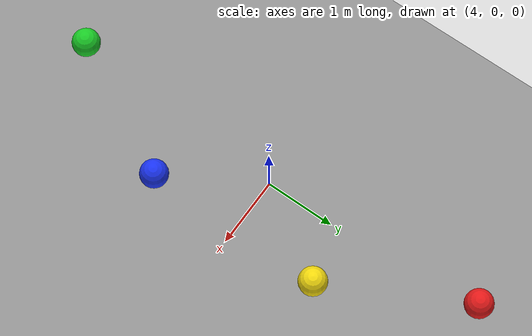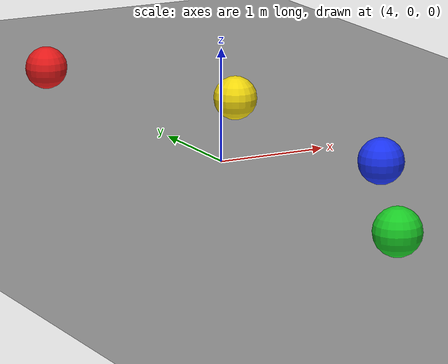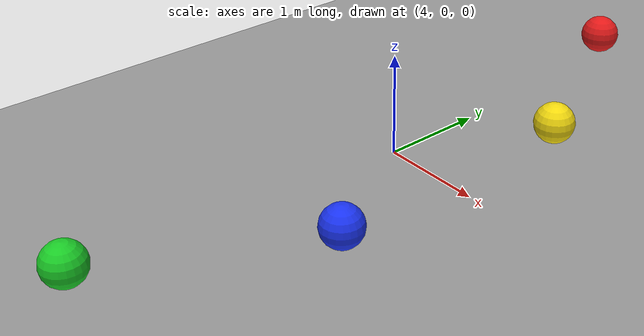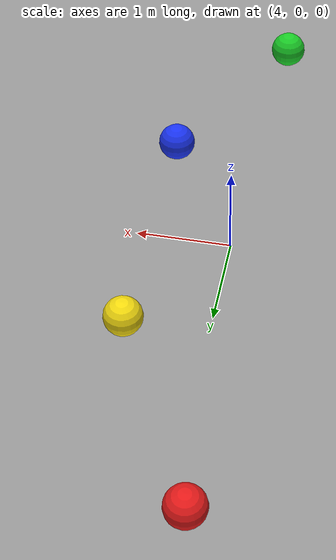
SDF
<?xml version="1.0"?>
<sdf version="1.6">
  <world name="colored_balls_arc">

    <!-- ==================== Physics ==================== -->
    <physics type="ode">
      <real_time_update_rate>1000.0</real_time_update_rate>
      <max_step_size>0.001</max_step_size>
      <real_time_factor>1</real_time_factor>
    </physics>

    <!-- ==================== Scene ==================== -->
    <scene>
      <ambient>0.6 0.6 0.6 1</ambient>
      <background>0.4 0.5 0.6 1</background>
      <shadows>false</shadows>
    </scene>

    <!-- ==================== Lighting ==================== -->
    <light name="sun" type="directional">
      <cast_shadows>true</cast_shadows>
      <pose>0 0 10 0 0 0</pose>
      <diffuse>0.9 0.9 0.9 1</diffuse>
      <specular>0.3 0.3 0.3 1</specular>
      <direction>-0.3 0.3 -1</direction>
    </light>

    <!-- ==================== Gazebo ROS State Plugin ==================== -->
    <plugin name="gazebo_ros_state" filename="libgazebo_ros_state.so">
      <ros>
        <namespace>/</namespace>
      </ros>
    </plugin>

    <!-- ==================== Ground Plane ==================== -->
    <model name="ground_plane">
      <static>true</static>
      <link name="link">
        <collision name="collision">
          <geometry>
            <plane>
              <normal>0 0 1</normal>
              <size>100 100</size>
            </plane>
          </geometry>
          <surface>
            <friction>
              <ode><mu>100</mu><mu2>50</mu2></ode>
            </friction>
          </surface>
        </collision>
        <visual name="visual">
          <cast_shadows>false</cast_shadows>
          <geometry>
            <plane>
              <normal>0 0 1</normal>
              <size>20 20</size>
            </plane>
          </geometry>
          <material>
            <ambient>0.58 0.58 0.58 1</ambient>
            <diffuse>0.58 0.58 0.58 1</diffuse>
            <specular>0 0 0 1</specular>
          </material>
        </visual>
      </link>
    </model>

    <!-- ==================== 红球 (Red Ball) θ=+40° ==================== -->
    <model name="red_ball">
      <static>false</static>
      <pose>3.83 3.21 0.20 0 0 0</pose>
      <link name="link">
        <inertial>
          <mass>0.5</mass>
          <inertia>
            <!-- I = 2/5 * mass * radius² = 2/5 * 0.5 * 0.04 = 0.0080 -->
            <ixx>0.0080</ixx><ixy>0</ixy><ixz>0</ixz>
            <iyy>0.0080</iyy><iyz>0</iyz>
            <izz>0.0080</izz>
          </inertia>
        </inertial>
        <collision name="collision">
          <geometry>
            <!-- 球半径（m）：同步修改 visual 中的 radius 和上方 pose 的 z -->
            <sphere><radius>0.20</radius></sphere>
          </geometry>
          <surface>
            <friction>
              <ode><mu>0.6</mu><mu2>0.6</mu2></ode>
            </friction>
            <bounce>
              <restitution_coefficient>0.5</restitution_coefficient>
              <threshold>0</threshold>
            </bounce>
          </surface>
        </collision>
        <visual name="visual">
          <geometry>
            <sphere><radius>0.20</radius></sphere>
          </geometry>
          <material>
            <ambient>0.9 0.1 0.1 1</ambient>
            <diffuse>0.9 0.1 0.1 1</diffuse>
            <specular>0.5 0.3 0.3 50</specular>
          </material>
        </visual>
      </link>
    </model>

    <!-- ==================== 黄球 (Yellow Ball) θ=+15° ==================== -->
    <model name="yellow_ball">
      <static>false</static>
      <pose>4.83 1.29 0.20 0 0 0</pose>
      <link name="link">
        <inertial>
          <mass>0.5</mass>
          <inertia>
            <!-- I = 2/5 * mass * radius² = 2/5 * 0.5 * 0.04 = 0.0080 -->
            <ixx>0.0080</ixx><ixy>0</ixy><ixz>0</ixz>
            <iyy>0.0080</iyy><iyz>0</iyz>
            <izz>0.0080</izz>
          </inertia>
        </inertial>
        <collision name="collision">
          <geometry>
            <!-- 球半径（m）：同步修改 visual 中的 radius 和上方 pose 的 z -->
            <sphere><radius>0.20</radius></sphere>
          </geometry>
          <surface>
            <friction>
              <ode><mu>0.6</mu><mu2>0.6</mu2></ode>
            </friction>
            <bounce>
              <restitution_coefficient>0.5</restitution_coefficient>
              <threshold>0</threshold>
            </bounce>
          </surface>
        </collision>
        <visual name="visual">
          <geometry>
            <sphere><radius>0.20</radius></sphere>
          </geometry>
          <material>
            <ambient>0.95 0.85 0.05 1</ambient>
            <diffuse>0.95 0.85 0.05 1</diffuse>
            <specular>0.5 0.5 0.2 50</specular>
          </material>
        </visual>
      </link>
    </model>

    <!-- ==================== 蓝球 (Blue Ball) θ=-15° ==================== -->
    <model name="blue_ball">
      <static>false</static>
      <pose>4.83 -1.29 0.20 0 0 0</pose>
      <link name="link">
        <inertial>
          <mass>0.5</mass>
          <inertia>
            <!-- I = 2/5 * mass * radius² = 2/5 * 0.5 * 0.04 = 0.0080 -->
            <ixx>0.0080</ixx><ixy>0</ixy><ixz>0</ixz>
            <iyy>0.0080</iyy><iyz>0</iyz>
            <izz>0.0080</izz>
          </inertia>
        </inertial>
        <collision name="collision">
          <geometry>
            <!-- 球半径（m）：同步修改 visual 中的 radius 和上方 pose 的 z -->
            <sphere><radius>0.20</radius></sphere>
          </geometry>
          <surface>
            <friction>
              <ode><mu>0.6</mu><mu2>0.6</mu2></ode>
            </friction>
            <bounce>
              <restitution_coefficient>0.5</restitution_coefficient>
              <threshold>0</threshold>
            </bounce>
          </surface>
        </collision>
        <visual name="visual">
          <geometry>
            <sphere><radius>0.20</radius></sphere>
          </geometry>
          <material>
            <ambient>0.1 0.2 0.95 1</ambient>
            <diffuse>0.1 0.2 0.95 1</diffuse>
            <specular>0.3 0.3 0.6 50</specular>
          </material>
        </visual>
      </link>
    </model>

    <!-- ==================== 绿球 (Green Ball) θ=-40° ==================== -->
    <model name="green_ball">
      <static>false</static>
      <pose>3.83 -3.21 0.20 0 0 0</pose>
      <link name="link">
        <inertial>
          <mass>0.5</mass>
          <inertia>
            <!-- I = 2/5 * mass * radius² = 2/5 * 0.5 * 0.04 = 0.0080 -->
            <ixx>0.0080</ixx><ixy>0</ixy><ixz>0</ixz>
            <iyy>0.0080</iyy><iyz>0</iyz>
            <izz>0.0080</izz>
          </inertia>
        </inertial>
        <collision name="collision">
          <geometry>
            <!-- 球半径（m）：同步修改 visual 中的 radius 和上方 pose 的 z -->
            <sphere><radius>0.20</radius></sphere>
          </geometry>
          <surface>
            <friction>
              <ode><mu>0.6</mu><mu2>0.6</mu2></ode>
            </friction>
            <bounce>
              <restitution_coefficient>0.5</restitution_coefficient>
              <threshold>0</threshold>
            </bounce>
          </surface>
        </collision>
        <visual name="visual">
          <geometry>
            <sphere><radius>0.20</radius></sphere>
          </geometry>
          <material>
            <ambient>0.1 0.8 0.15 1</ambient>
            <diffuse>0.1 0.8 0.15 1</diffuse>
            <specular>0.2 0.5 0.2 50</specular>
          </material>
        </visual>
      </link>
    </model>

  </world>
</sdf>
